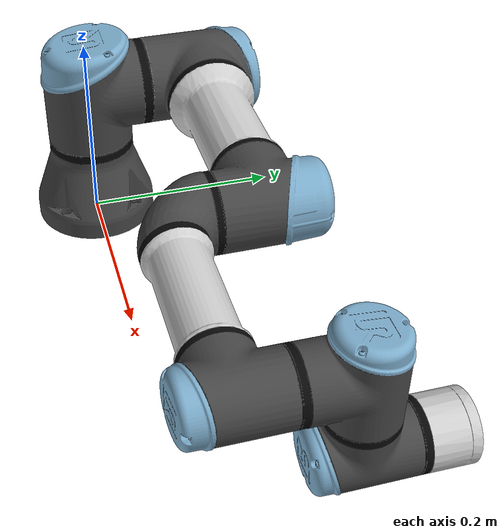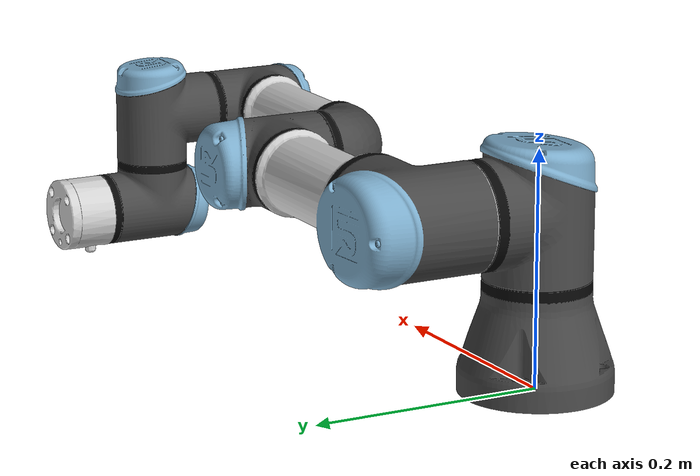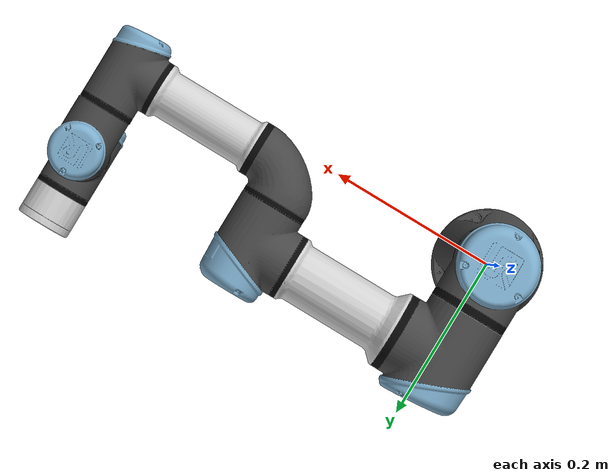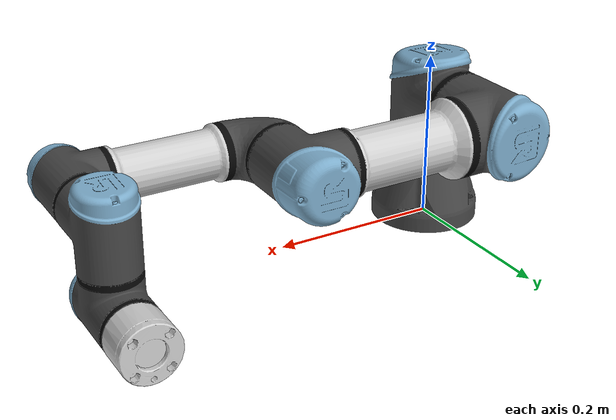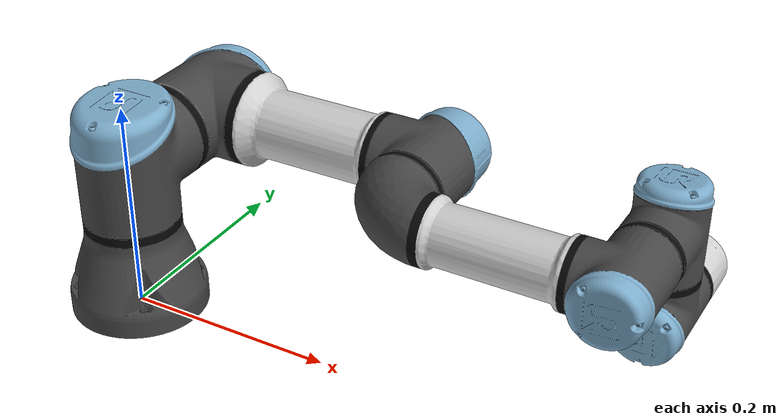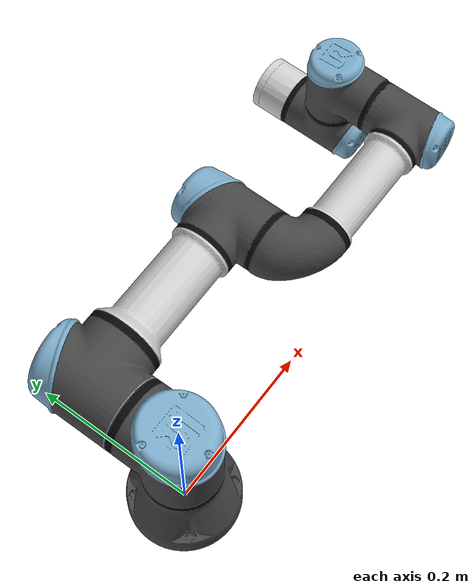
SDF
<sdf version='1.11'>
    <world name="ur3e_position_world">

    <light type="directional" name="sun">
        <cast_shadows>true</cast_shadows>
        <pose>0 0 5 0 0 0</pose>
        <diffuse>0.8 0.8 0.8 1</diffuse>
        <specular>0.2 0.2 0.2 1</specular>
        <direction>-0.5 -0.1 -0.9</direction>
        <intensity>2.0</intensity>
    </light>

        <model name="ur3e_1">

            <include>
                <name>ur3e_1_position_controller</name>
                <static>false</static>
                <uri>model://ur3e_position_controller.sdf</uri>
            </include>

            <joint name='base_joint' type='fixed'>
                <pose relative_to='__model__'>0 0 0 0 0 0</pose>
                <parent>world</parent>
                <child>ur3e_1_position_controller::ur3e_1::base_link</child>
            </joint>

        </model>
    </world>
</sdf>

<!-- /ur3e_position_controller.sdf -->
<sdf version='1.11'>

    <model name="ur3e_position_model">

    <include>
        <name>ur3e_1</name>
        <static>false</static>
        <uri>model://ur3e.sdf</uri>

        <plugin
        filename="gz-sim-joint-position-controller-system"
        name="gz::sim::systems::JointPositionController">
            <joint_name>shoulder_pan_joint</joint_name>
            <use_velocity_commands>True</use_velocity_commands>
            <cmd_max>0.25</cmd_max>
        </plugin>

        <plugin
        filename="gz-sim-joint-position-controller-system"
        name="gz::sim::systems::JointPositionController">
            <joint_name>shoulder_lift_joint</joint_name>
            <use_velocity_commands>True</use_velocity_commands>
            <cmd_max>0.25</cmd_max>
        </plugin>

        <plugin
        filename="gz-sim-joint-position-controller-system"
        name="gz::sim::systems::JointPositionController">
            <joint_name>elbow_joint</joint_name>
            <use_velocity_commands>True</use_velocity_commands>
            <cmd_max>0.25</cmd_max>
        </plugin>

        <plugin
        filename="gz-sim-joint-position-controller-system"
        name="gz::sim::systems::JointPositionController">
            <joint_name>wrist_1_joint</joint_name>
            <use_velocity_commands>True</use_velocity_commands>
            <cmd_max>0.25</cmd_max>
        </plugin>

        <plugin
        filename="gz-sim-joint-position-controller-system"
        name="gz::sim::systems::JointPositionController">
            <joint_name>wrist_2_joint</joint_name>
            <use_velocity_commands>True</use_velocity_commands>
            <cmd_max>0.25</cmd_max>
        </plugin>

        <plugin
        filename="gz-sim-joint-position-controller-system"
        name="gz::sim::systems::JointPositionController">
            <joint_name>wrist_3_joint</joint_name>
            <use_velocity_commands>True</use_velocity_commands>
            <cmd_max>0.25</cmd_max>
        </plugin>

        <plugin
        filename="gz-sim-joint-state-publisher-system"
        name="gz::sim::systems::JointStatePublisher">
        </plugin>

    </include>

    </model>

</sdf>

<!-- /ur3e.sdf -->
<sdf version='1.11'>
  <model name='ur3e_1'>
    <link name='base_link'>
      <inertial>
        <pose>0 0 0 0 0 0</pose>
        <mass>2</mass>
        <inertia>
          <ixx>0.0030531654453999999</ixx>
          <ixy>0</ixy>
          <ixz>0</ixz>
          <iyy>0.0030531654453999999</iyy>
          <iyz>0</iyz>
          <izz>0.0056249999999999998</izz>
        </inertia>
      </inertial>
      <collision name='base_link_inertia_collision'>
        <pose>0 0 0 0 0 -2.4492935982947059e-16</pose>
        <geometry>
          <mesh>
            <scale>1 1 1</scale>
            <uri>./vendor/Universal_Robots_ROS2_Description/meshes/ur3e/collision/base.stl</uri>
          </mesh>
        </geometry>
      </collision>
      <visual name='base_link_inertia_visual'>
        <pose>0 0 0 0 0 -2.4492935982947059e-16</pose>
        <geometry>
          <mesh>
            <scale>1 1 1</scale>
            <uri>./vendor/Universal_Robots_ROS2_Description/meshes/ur3e/visual/base.dae</uri>
          </mesh>
        </geometry>
      </visual>
    </link>
    <joint name='shoulder_pan_joint' type='revolute'>
      <pose relative_to='base_link'>0 0 0.15185000000000001 0 0 3.1415926535897931</pose>
      <parent>base_link</parent>
      <child>shoulder_link</child>
      <axis>
        <xyz>0 0 1</xyz>
        <limit>
          <lower>-6.2831853071795862</lower>
          <upper>6.2831853071795862</upper>
          <effort>54</effort>
          <velocity>3.1415926535897931</velocity>
        </limit>
        <dynamics>
          <damping>0</damping>
          <friction>0</friction>
          <spring_reference>0</spring_reference>
          <spring_stiffness>0</spring_stiffness>
        </dynamics>
      </axis>
    </joint>
    <link name='shoulder_link'>
      <pose relative_to='shoulder_pan_joint'>0 0 0 0 0 0</pose>
      <inertial>
        <pose>0 0 -0.02 1.570796326794897 0 0</pose>
        <mass>1.98</mass>
        <inertia>
          <ixx>0.0027656999999999998</ixx>
          <ixy>9.5999999999999996e-06</ixy>
          <ixz>-1.49e-05</ixz>
          <iyy>0.0021500999999999998</iyy>
          <iyz>0.0001873</iyz>
          <izz>0.0025625999999999999</izz>
        </inertia>
      </inertial>
      <collision name='shoulder_link_collision'>
        <pose>0 0 0 0 0 3.1415926535897931</pose>
        <geometry>
          <mesh>
            <scale>1 1 1</scale>
            <uri>./vendor/Universal_Robots_ROS2_Description/meshes/ur3e/collision/shoulder.stl</uri>
          </mesh>
        </geometry>
      </collision>
      <visual name='shoulder_link_visual'>
        <pose>0 0 0 0 0 3.1415926535897931</pose>
        <geometry>
          <mesh>
            <scale>1 1 1</scale>
            <uri>./vendor/Universal_Robots_ROS2_Description/meshes/ur3e/visual/shoulder.dae</uri>
          </mesh>
        </geometry>
      </visual>
    </link>
    <joint name='shoulder_lift_joint' type='revolute'>
      <pose relative_to='shoulder_link'>0 0 0 1.5707963270000003 0 0</pose>
      <parent>shoulder_link</parent>
      <child>upper_arm_link</child>
      <axis>
        <xyz>0 0 1</xyz>
        <limit>
          <lower>-6.2831853071795862</lower>
          <upper>6.2831853071795862</upper>
          <effort>54</effort>
          <velocity>3.1415926535897931</velocity>
        </limit>
        <dynamics>
          <damping>0</damping>
          <friction>0</friction>
          <spring_reference>0</spring_reference>
          <spring_stiffness>0</spring_stiffness>
        </dynamics>
      </axis>
    </joint>
    <link name='upper_arm_link'>
      <pose relative_to='shoulder_lift_joint'>0 0 0 0 0 0</pose>
      <inertial>
        <pose>-0.11355 0 0.1157 0 0 0</pose>
        <mass>3.4445000000000001</mass>
        <inertia>
          <ixx>0.0042623000000000001</ixx>
          <ixy>-4.0899999999999998e-05</ixy>
          <ixz>-0.0014959999999999999</ixz>
          <iyy>0.046028399999999997</iyy>
          <iyz>-1.29e-05</iyz>
          <izz>0.044894700000000003</izz>
        </inertia>
      </inertial>
      <collision name='upper_arm_link_collision'>
        <pose>0 0 0.12 1.5707963267948959 5.5511151231257827e-17 -1.5707963267948959</pose>
        <geometry>
          <mesh>
            <scale>1 1 1</scale>
            <uri>./vendor/Universal_Robots_ROS2_Description/meshes/ur3e/collision/upperarm.stl</uri>
          </mesh>
        </geometry>
      </collision>
      <visual name='upper_arm_link_visual'>
        <pose>0 0 0.12 1.5707963267948959 5.5511151231257827e-17 -1.5707963267948959</pose>
        <geometry>
          <mesh>
            <scale>1 1 1</scale>
            <uri>./vendor/Universal_Robots_ROS2_Description/meshes/ur3e/visual/upperarm.dae</uri>
          </mesh>
        </geometry>
      </visual>
    </link>
    <joint name='elbow_joint' type='revolute'>
      <pose relative_to='upper_arm_link'>-0.24354999999999999 0 0 0 0 0</pose>
      <parent>upper_arm_link</parent>
      <child>forearm_link</child>
      <axis>
        <xyz>0 0 1</xyz>
        <limit>
          <lower>-3.1415926535897931</lower>
          <upper>3.1415926535897931</upper>
          <effort>28</effort>
          <velocity>3.1415926535897931</velocity>
        </limit>
        <dynamics>
          <damping>0</damping>
          <friction>0</friction>
          <spring_reference>0</spring_reference>
          <spring_stiffness>0</spring_stiffness>
        </dynamics>
      </axis>
    </joint>
    <link name='forearm_link'>
      <pose relative_to='elbow_joint'>0 0 0 0 0 0</pose>
      <inertial>
        <pose>-0.16320000000000001 0 0.023800000000000002 0 0 0</pose>
        <mass>1.4370000000000001</mass>
        <inertia>
          <ixx>0.0010510999999999999</ixx>
          <ixy>0</ixy>
          <ixz>-3.3099999999999998e-05</ixz>
          <iyy>0.0113396</iyy>
          <iyz>2.2000000000000001e-06</iyz>
          <izz>0.0110895</izz>
        </inertia>
      </inertial>
      <collision name='forearm_link_collision'>
        <pose>0 0 0.027 1.5707963267948959 5.5511151231257827e-17 -1.5707963267948959</pose>
        <geometry>
          <mesh>
            <scale>1 1 1</scale>
            <uri>./vendor/Universal_Robots_ROS2_Description/meshes/ur3e/collision/forearm.stl</uri>
          </mesh>
        </geometry>
      </collision>
      <visual name='forearm_link_visual'>
        <pose>0 0 0.027 1.5707963267948959 5.5511151231257827e-17 -1.5707963267948959</pose>
        <geometry>
          <mesh>
            <scale>1 1 1</scale>
            <uri>./vendor/Universal_Robots_ROS2_Description/meshes/ur3e/visual/forearm.dae</uri>
          </mesh>
        </geometry>
      </visual>
    </link>
    <joint name='wrist_1_joint' type='revolute'>
      <pose relative_to='forearm_link'>-0.2132 0 0.13105 0 0 0</pose>
      <parent>forearm_link</parent>
      <child>wrist_1_link</child>
      <axis>
        <xyz>0 0 1</xyz>
        <limit>
          <lower>-6.2831853071795862</lower>
          <upper>6.2831853071795862</upper>
          <effort>9</effort>
          <velocity>6.2831853071795862</velocity>
        </limit>
        <dynamics>
          <damping>0</damping>
          <friction>0</friction>
          <spring_reference>0</spring_reference>
          <spring_stiffness>0</spring_stiffness>
        </dynamics>
      </axis>
    </joint>
    <link name='wrist_1_link'>
      <pose relative_to='wrist_1_joint'>0 0 0 0 0 0</pose>
      <inertial>
        <pose>0 -0.01 0 1.570796326794897 0 0</pose>
        <mass>0.871</mass>
        <inertia>
          <ixx>0.00081740000000000003</ixx>
          <ixy>-4.9999999999999998e-07</ixy>
          <ixz>2.0999999999999998e-06</ixz>
          <iyy>0.00068440000000000005</iyy>
          <iyz>6.1699999999999995e-05</iyz>
          <izz>0.00054969999999999997</izz>
        </inertia>
      </inertial>
      <collision name='wrist_1_link_collision'>
        <pose>0 0 -0.104 1.5707963267948959 0 0</pose>
        <geometry>
          <mesh>
            <scale>1 1 1</scale>
            <uri>./vendor/Universal_Robots_ROS2_Description/meshes/ur3e/collision/wrist1.stl</uri>
          </mesh>
        </geometry>
      </collision>
      <visual name='wrist_1_link_visual'>
        <pose>0 0 -0.104 1.5707963267948959 0 0</pose>
        <geometry>
          <mesh>
            <scale>1 1 1</scale>
            <uri>./vendor/Universal_Robots_ROS2_Description/meshes/ur3e/visual/wrist1.dae</uri>
          </mesh>
        </geometry>
      </visual>
    </link>
    <joint name='wrist_2_joint' type='revolute'>
      <pose relative_to='wrist_1_link'>0 -0.085349999999999995 -1.750557762378351e-11 1.5707963270000003 0 0</pose>
      <parent>wrist_1_link</parent>
      <child>wrist_2_link</child>
      <axis>
        <xyz>0 0 1</xyz>
        <limit>
          <lower>-6.2831853071795862</lower>
          <upper>6.2831853071795862</upper>
          <effort>9</effort>
          <velocity>6.2831853071795862</velocity>
        </limit>
        <dynamics>
          <damping>0</damping>
          <friction>0</friction>
          <spring_reference>0</spring_reference>
          <spring_stiffness>0</spring_stiffness>
        </dynamics>
      </axis>
    </joint>
    <link name='wrist_2_link'>
      <pose relative_to='wrist_2_joint'>0 0 0 0 0 0</pose>
      <inertial>
        <pose>0 0.01 0 -1.570796326794897 0 0</pose>
        <mass>0.80500000000000005</mass>
        <inertia>
          <ixx>0.00060590000000000004</ixx>
          <ixy>-5.9999999999999997e-07</ixy>
          <ixz>-5.9999999999999997e-07</ixz>
          <iyy>0.00058370000000000004</iyy>
          <iyz>-2.7100000000000001e-05</iyz>
          <izz>0.00038309999999999999</izz>
        </inertia>
      </inertial>
      <collision name='wrist_2_link_collision'>
        <pose>0 0 -0.085349999999999995 0 0 0</pose>
        <geometry>
          <mesh>
            <scale>1 1 1</scale>
            <uri>./vendor/Universal_Robots_ROS2_Description/meshes/ur3e/collision/wrist2.stl</uri>
          </mesh>
        </geometry>
      </collision>
      <visual name='wrist_2_link_visual'>
        <pose>0 0 -0.085349999999999995 0 0 0</pose>
        <geometry>
          <mesh>
            <scale>1 1 1</scale>
            <uri>./vendor/Universal_Robots_ROS2_Description/meshes/ur3e/visual/wrist2.dae</uri>
          </mesh>
        </geometry>
      </visual>
    </link>
    <joint name='wrist_3_joint' type='revolute'>
      <pose relative_to='wrist_2_link'>0 0.092100000000000001 -1.8890025766261998e-11 -1.5707963270000003 1.2246467991473527e-16 -1.2246467991473527e-16</pose>
      <parent>wrist_2_link</parent>
      <child>wrist_3_link</child>
      <axis>
        <xyz>0 0 1</xyz>
        <limit>
          <effort>9</effort>
          <velocity>6.2831853071795862</velocity>
          <lower>-inf</lower>
          <upper>inf</upper>
        </limit>
        <dynamics>
          <damping>0</damping>
          <friction>0</friction>
          <spring_reference>0</spring_reference>
          <spring_stiffness>0</spring_stiffness>
        </dynamics>
      </axis>
    </joint>
    <link name='wrist_3_link'>
      <pose relative_to='wrist_3_joint'>0 0 0 0 0 0</pose>
      <inertial>
        <pose>0 0 -0.02 0 0 0</pose>
        <mass>0.26100000000000001</mass>
        <inertia>
          <ixx>0.000108</ixx>
          <ixy>-9.9999999999999995e-08</ixy>
          <ixz>-9.9999999999999995e-08</ixz>
          <iyy>0.0001086</iyy>
          <iyz>-1.9999999999999999e-07</iyz>
          <izz>0.0001371</izz>
        </inertia>
      </inertial>
      <collision name='wrist_3_link_collision'>
        <pose>0 0 -0.092100000000000001 1.5707963267948959 0 0</pose>
        <geometry>
          <mesh>
            <scale>1 1 1</scale>
            <uri>./vendor/Universal_Robots_ROS2_Description/meshes/ur3e/collision/wrist3.stl</uri>
          </mesh>
        </geometry>
      </collision>
      <visual name='wrist_3_link_visual'>
        <pose>0 0 -0.092100000000000001 1.5707963267948959 0 0</pose>
        <geometry>
          <mesh>
            <scale>1 1 1</scale>
            <uri>./vendor/Universal_Robots_ROS2_Description/meshes/ur3e/visual/wrist3.dae</uri>
          </mesh>
        </geometry>
      </visual>
    </link>
    <frame name='base_link-base_fixed_joint' attached_to='base_link'>
      <pose>0 0 0 0 0 3.1415926535897931</pose>
    </frame>
    <frame name='base' attached_to='base_link-base_fixed_joint'>
      <pose>0 0 0 0 0 0</pose>
    </frame>
    <frame name='base_link-base_link_inertia' attached_to='base_link'>
      <pose>0 0 0 0 0 3.1415926535897931</pose>
    </frame>
    <frame name='base_link_inertia' attached_to='base_link-base_link_inertia'>
      <pose>0 0 0 0 0 0</pose>
    </frame>
    <frame name='flange-tool0' attached_to='flange'>
      <pose>0 0 0 1.5707963267948959 -5.5511151231257827e-17 1.5707963267948959</pose>
    </frame>
    <frame name='tool0' attached_to='flange-tool0'>
      <pose>0 0 0 0 0 0</pose>
    </frame>
    <frame name='wrist_3-flange' attached_to='wrist_3_link'>
      <pose>0 0 0 -1.5707963267948957 -1.5707963267948966 0</pose>
    </frame>
    <frame name='flange' attached_to='wrist_3-flange'>
      <pose>0 0 0 0 0 0</pose>
    </frame>
    <frame name='wrist_3_link-ft_frame' attached_to='wrist_3_link'>
      <pose>0 0 0 3.1415926535897931 0 0</pose>
    </frame>
    <frame name='ft_frame' attached_to='wrist_3_link-ft_frame'>
      <pose>0 0 0 0 0 0</pose>
    </frame>
  </model>
</sdf>
